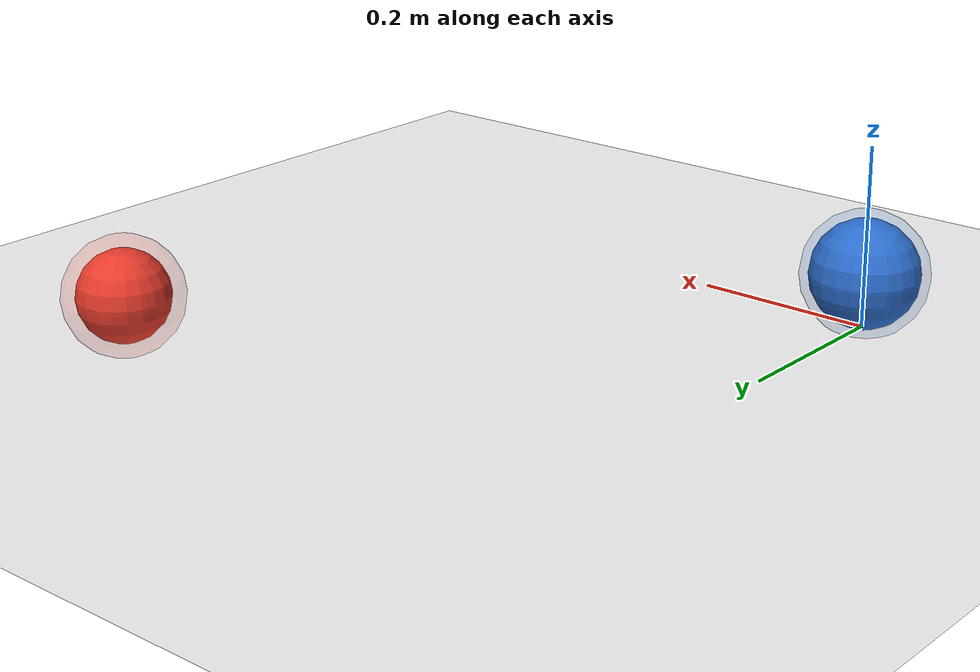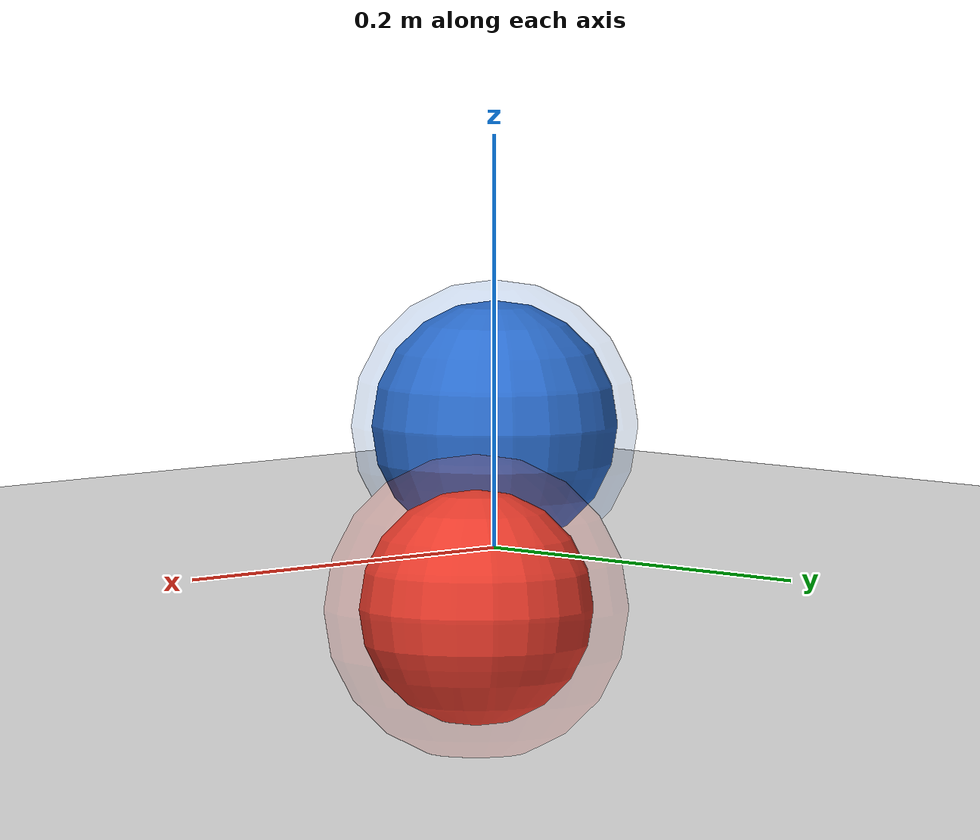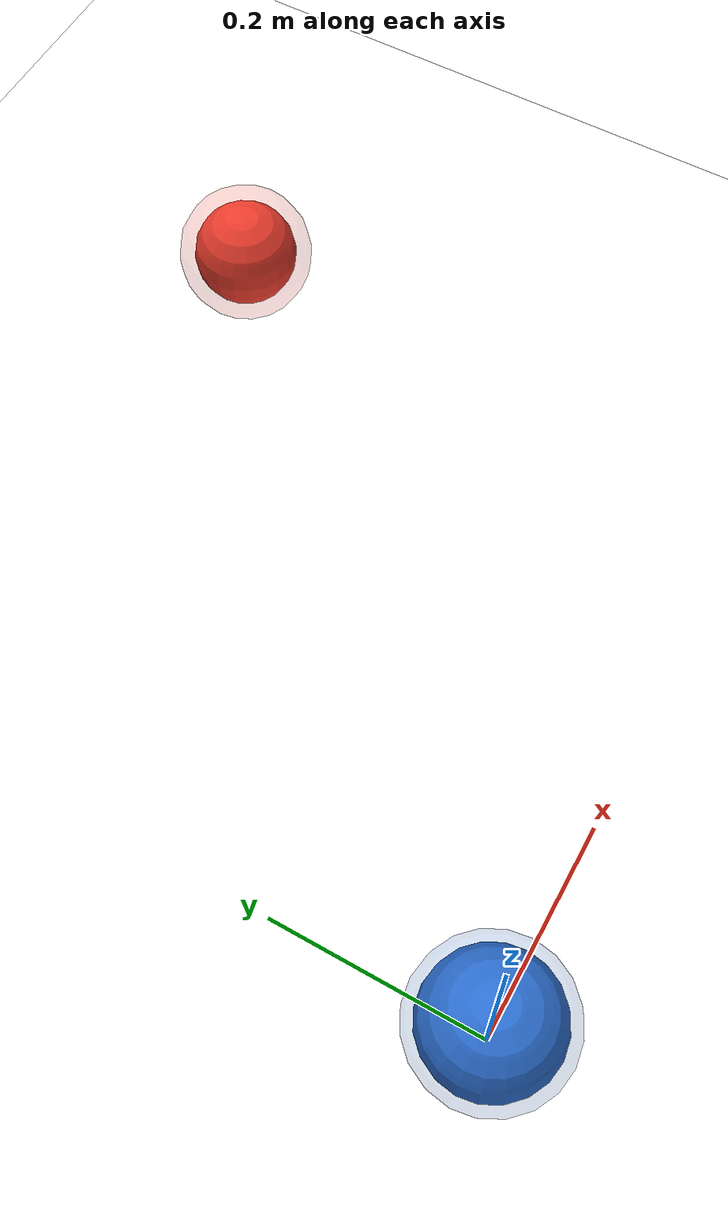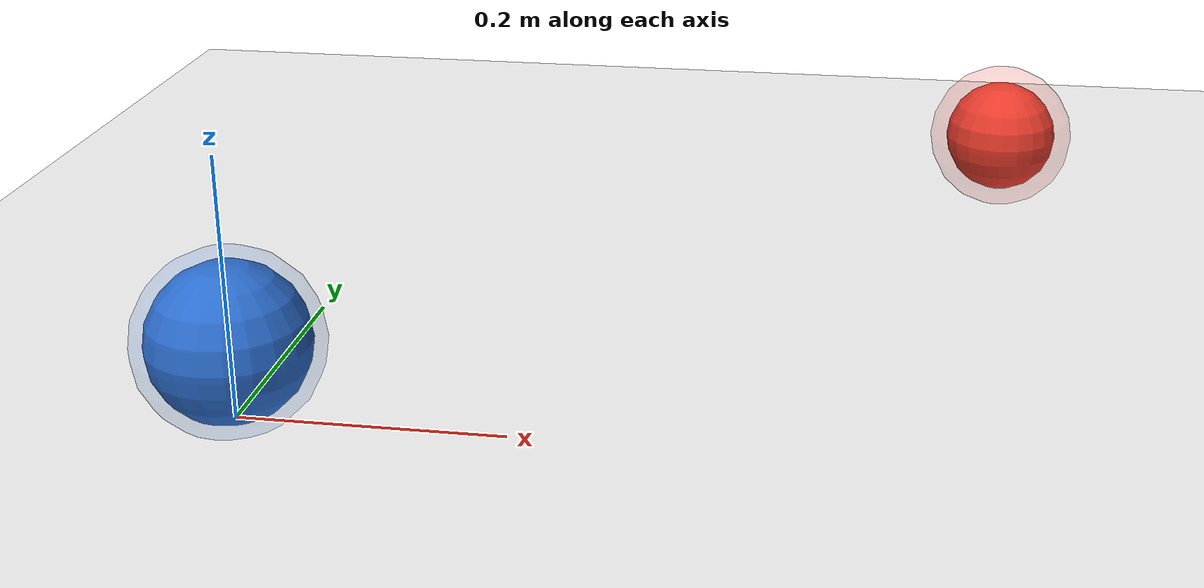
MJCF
<mujoco model="point_reacher">
  <option timestep="0.01" gravity="0 0 0" integrator="RK4"/>

  <visual>
    <headlight ambient="0.35 0.35 0.35" diffuse="0.75 0.75 0.75" specular="0.15 0.15 0.15"/>
    <map znear="0.01"/>
    <global azimuth="135" elevation="-35"/>
  </visual>

  <default>
    <joint damping="1.0" armature="0.05" limited="true"/>
    <geom friction="0.4 0.005 0.0001" rgba="0.18 0.44 0.82 1"/>
    <motor ctrllimited="true" ctrlrange="-1 1"/>
  </default>

  <worldbody>
    <light pos="0 0 2.5" dir="0 0 -1"/>
    <geom name="floor" type="plane" size="2 2 0.1" rgba="0.96 0.96 0.96 1"/>

    <body name="point" pos="0 0 0.06">
      <joint name="slide_x" type="slide" axis="1 0 0" range="-1 1"/>
      <joint name="slide_y" type="slide" axis="0 1 0" range="-1 1"/>
      <geom name="agent" type="sphere" size="0.06" mass="0.2"/>
      <site name="agent_site" type="sphere" size="0.07" rgba="0.18 0.44 0.82 0.18"/>
    </body>

    <body name="target" pos="0.55 0.55 0.06">
      <geom
        name="target_geom"
        type="sphere"
        size="0.05"
        contype="0"
        conaffinity="0"
        mass="0.0001"
        rgba="0.92 0.24 0.18 0.95"
      />
      <site name="target_site" type="sphere" size="0.065" rgba="0.92 0.24 0.18 0.18"/>
    </body>
  </worldbody>

  <actuator>
    <motor name="x_motor" joint="slide_x" gear="1"/>
    <motor name="y_motor" joint="slide_y" gear="1"/>
  </actuator>
</mujoco>
